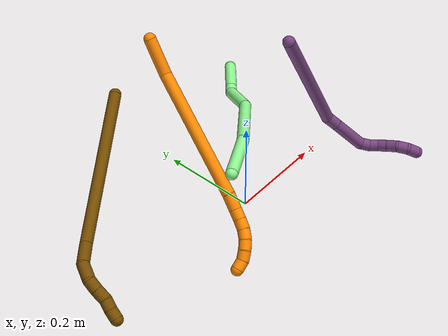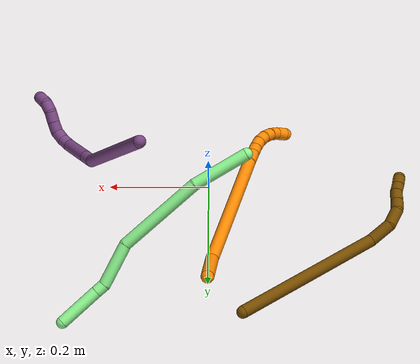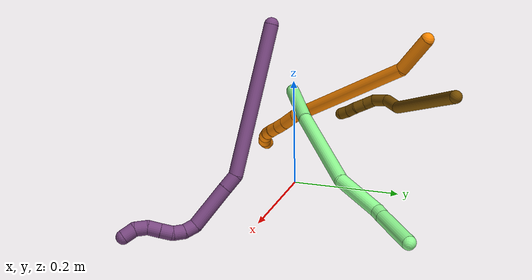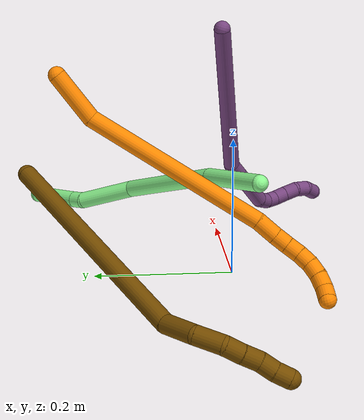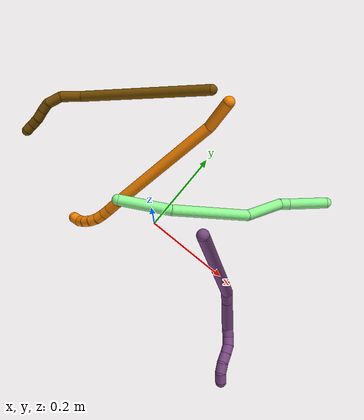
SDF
<sdf version="1.7">
 <world name="default">
  <model name="photoneo_s_sensor">
   <static>1</static>
   <pose>0 0 2 1.57079 1.57079 3.14159</pose>
   <link name="link">
    <inertial><mass>0.1</mass></inertial>
    <sensor name="sensor" type="depth">
     <update_rate>30</update_rate>
     <camera>
      <horizontal_fov>1.22</horizontal_fov>
      <image><width>1920</width><height>1200</height><format>B8G8R8</format></image>
      <clip><near>0.1</near><far>4</far></clip>
      <depth_camera><output>points</output></depth_camera>
     </camera>
     <plugin name="camera_plugin" filename="libgazebo_ros_depth_camera.so">
      <baseline>0.2</baseline>
      <alwaysOn>1</alwaysOn>
      <updateRate>0.0</updateRate>
      <cameraName>camera_ir</cameraName>
      <imageTopicName>/camera/color/image_raw</imageTopicName>
      <cameraInfoTopicName>/camera/color/camera_info</cameraInfoTopicName>
      <depthImageTopicName>/camera/depth/image_raw</depthImageTopicName>
      <depthImageCameraInfoTopicName>/camera/depth/camera_info</depthImageCameraInfoTopicName>
      <pointCloudTopicName>/camera/depth/points</pointCloudTopicName>
      <frameName>fr_optical</frameName>
      <pointCloudCutoff>0.1</pointCloudCutoff>
      <pointCloudCutoffMax>2.0</pointCloudCutoffMax>
      <distortionK1>0</distortionK1>
      <distortionK2>0</distortionK2>
      <distortionK3>0</distortionK3>
      <distortionT1>0</distortionT1>
      <distortionT2>0</distortionT2>
      <CxPrime>0</CxPrime>
      <Cx>0</Cx>
      <Cy>0</Cy>
      <focalLength>0</focalLength>
      <hackBaseline>0</hackBaseline>
     </plugin>
    </sensor>
   </link>
  </model>
  <model name="bin">
   <static>1</static>
   <link name="bottom">
    <collision name="collision-bottom">
     <pose>0 0 -0.01 0 -0 0</pose>
     <geometry><box><size>0.8 0.6 0.02</size></box></geometry>
     <surface>
      <friction><ode><mu>100</mu><mu2>100</mu2></ode></friction>
      <contact><collide_bitmask>65535</collide_bitmask></contact>
     </surface>
    </collision>
   </link>
   <link name="west_wall">
    <collision name="collision-west_wall">
     <pose>-0.41 0 0.1 0 -0 0</pose>
     <geometry><box><size>0.02 0.6 0.2</size></box></geometry>
     <surface>
      <friction><ode><mu>100</mu><mu2>100</mu2></ode></friction>
      <contact><collide_bitmask>65535</collide_bitmask></contact>
     </surface>
    </collision>
   </link>
   <link name="east_wall">
    <collision name="collision-east_wall">
     <pose>0.41 0 0.1 0 -0 0</pose>
     <geometry><box><size>0.02 0.6 0.2</size></box></geometry>
     <surface>
      <friction><ode><mu>100</mu><mu2>100</mu2></ode></friction>
      <contact><collide_bitmask>65535</collide_bitmask></contact>
     </surface>
    </collision>
   </link>
   <link name="south_wall">
    <collision name="collision-south_wall">
     <pose>0 -0.31 0.1 0 -0 0</pose>
     <geometry><box><size>0.8 0.02 0.2</size></box></geometry>
     <surface>
      <friction><ode><mu>100</mu><mu2>100</mu2></ode></friction>
      <contact><collide_bitmask>65535</collide_bitmask></contact>
     </surface>
    </collision>
   </link>
   <link name="north_wall">
    <collision name="collision-north_wall">
     <pose>0 0.31 0.1 0 -0 0</pose>
     <geometry><box><size>0.8 0.02 0.2</size></box></geometry>
     <surface>
      <friction><ode><mu>100</mu><mu2>100</mu2></ode></friction>
      <contact><collide_bitmask>65535</collide_bitmask></contact>
     </surface>
    </collision>
   </link>
  </model>
  <model name="12">
   <static>0</static>
   <link name="12">
    <collision name="collision-cylinder-e_1_1_4">
     <pose>-0.071217 -0.115047 0.090414 0.904721 -0.452958 -0.223037</pose>
     <geometry><cylinder><radius>0.0125</radius><length>0.325467</length></cylinder></geometry>
     <surface>
      <friction><ode><mu>1.16</mu><mu2>1.16</mu2><slip1>0</slip1><slip2>0</slip2></ode></friction>
      <contact><ode><kp>1e+06</kp><kd>1</kd><max_vel>0</max_vel><min_depth>0.001</min_depth></ode></contact>
     </surface>
    </collision>
    <visual name="visual-cylinder-e_1_1_4">
     <pose>-0.071217 -0.115047 0.090414 0.904721 -0.452958 -0.223037</pose>
     <geometry><cylinder><radius>0.0125</radius><length>0.325467</length></cylinder></geometry>
     <material><ambient>0.466667 0.301961 0 1</ambient></material>
    </visual>
    <collision name="collision-cylinder-e_2_4_5">
     <pose>-0.15265 -0.24023 0.20076 0.47047 -0.428564 -0.104222</pose>
     <geometry><cylinder><radius>0.0125</radius><length>0.049173</length></cylinder></geometry>
     <surface>
      <friction><ode><mu>1.16</mu><mu2>1.16</mu2><slip1>0</slip1><slip2>0</slip2></ode></friction>
      <contact><ode><kp>1e+06</kp><kd>1</kd><max_vel>0</max_vel><min_depth>0.001</min_depth></ode></contact>
     </surface>
    </collision>
    <visual name="visual-cylinder-e_2_4_5">
     <pose>-0.15265 -0.24023 0.20076 0.47047 -0.428564 -0.104222</pose>
     <geometry><cylinder><radius>0.0125</radius><length>0.049173</length></cylinder></geometry>
     <material><ambient>0.466667 0.301961 0 1</ambient></material>
    </visual>
    <collision name="collision-cylinder-e_3_5_6">
     <pose>-0.162781 -0.261011 0.235579 0.620724 0.004732 0.001518</pose>
     <geometry><cylinder><radius>0.0125</radius><length>0.036599</length></cylinder></geometry>
     <surface>
      <friction><ode><mu>1.16</mu><mu2>1.16</mu2><slip1>0</slip1><slip2>0</slip2></ode></friction>
      <contact><ode><kp>1e+06</kp><kd>1</kd><max_vel>0</max_vel><min_depth>0.001</min_depth></ode></contact>
     </surface>
    </collision>
    <visual name="visual-cylinder-e_3_5_6">
     <pose>-0.162781 -0.261011 0.235579 0.620724 0.004732 0.001518</pose>
     <geometry><cylinder><radius>0.0125</radius><length>0.036599</length></cylinder></geometry>
     <material><ambient>0.466667 0.301961 0 1</ambient></material>
    </visual>
    <collision name="collision-cylinder-e_4_6_7">
     <pose>-0.158329 -0.280125 0.257183 0.900257 0.383744 0.187191</pose>
     <geometry><cylinder><radius>0.0125</radius><length>0.02332</length></cylinder></geometry>
     <surface>
      <friction><ode><mu>1.16</mu><mu2>1.16</mu2><slip1>0</slip1><slip2>0</slip2></ode></friction>
      <contact><ode><kp>1e+06</kp><kd>1</kd><max_vel>0</max_vel><min_depth>0.001</min_depth></ode></contact>
     </surface>
    </collision>
    <visual name="visual-cylinder-e_4_6_7">
     <pose>-0.158329 -0.280125 0.257183 0.900257 0.383744 0.187191</pose>
     <geometry><cylinder><radius>0.0125</radius><length>0.02332</length></cylinder></geometry>
     <material><ambient>0.466667 0.301961 0 1</ambient></material>
    </visual>
    <collision name="collision-cylinder-e_5_7_8">
     <pose>-0.148604 -0.296714 0.270756 0.8696 0.467251 0.220154</pose>
     <geometry><cylinder><radius>0.0125</radius><length>0.023799</length></cylinder></geometry>
     <surface>
      <friction><ode><mu>1.16</mu><mu2>1.16</mu2><slip1>0</slip1><slip2>0</slip2></ode></friction>
      <contact><ode><kp>1e+06</kp><kd>1</kd><max_vel>0</max_vel><min_depth>0.001</min_depth></ode></contact>
     </surface>
    </collision>
    <visual name="visual-cylinder-e_5_7_8">
     <pose>-0.148604 -0.296714 0.270756 0.8696 0.467251 0.220154</pose>
     <geometry><cylinder><radius>0.0125</radius><length>0.023799</length></cylinder></geometry>
     <material><ambient>0.466667 0.301961 0 1</ambient></material>
    </visual>
    <collision name="collision-cylinder-e_6_8_9">
     <pose>-0.141115 -0.313357 0.283454 0.969903 0.203075 0.107271</pose>
     <geometry><cylinder><radius>0.0125</radius><length>0.021107</length></cylinder></geometry>
     <surface>
      <friction><ode><mu>1.16</mu><mu2>1.16</mu2><slip1>0</slip1><slip2>0</slip2></ode></friction>
      <contact><ode><kp>1e+06</kp><kd>1</kd><max_vel>0</max_vel><min_depth>0.001</min_depth></ode></contact>
     </surface>
    </collision>
    <visual name="visual-cylinder-e_6_8_9">
     <pose>-0.141115 -0.313357 0.283454 0.969903 0.203075 0.107271</pose>
     <geometry><cylinder><radius>0.0125</radius><length>0.021107</length></cylinder></geometry>
     <material><ambient>0.466667 0.301961 0 1</ambient></material>
    </visual>
    <collision name="collision-cylinder-e_7_9_2">
     <pose>-0.136235 -0.329219 0.295935 0.835392 0.271313 0.121008</pose>
     <geometry><cylinder><radius>0.0125</radius><length>0.020536</length></cylinder></geometry>
     <surface>
      <friction><ode><mu>1.16</mu><mu2>1.16</mu2><slip1>0</slip1><slip2>0</slip2></ode></friction>
      <contact><ode><kp>1e+06</kp><kd>1</kd><max_vel>0</max_vel><min_depth>0.001</min_depth></ode></contact>
     </surface>
    </collision>
    <visual name="visual-cylinder-e_7_9_2">
     <pose>-0.136235 -0.329219 0.295935 0.835392 0.271313 0.121008</pose>
     <geometry><cylinder><radius>0.0125</radius><length>0.020536</length></cylinder></geometry>
     <material><ambient>0.466667 0.301961 0 1</ambient></material>
    </visual>
    <collision name="collision-sphere-2">
     <pose>-0.133483 -0.336555 0.302571 0 -0 0</pose>
     <geometry><sphere><radius>0.0125</radius></sphere></geometry>
     <surface>
      <friction><ode><mu>1.16</mu><mu2>1.16</mu2><slip1>0</slip1><slip2>0</slip2></ode></friction>
      <contact><ode><kp>1e+06</kp><kd>1</kd><max_vel>0</max_vel><min_depth>0.001</min_depth></ode></contact>
     </surface>
    </collision>
    <visual name="visual-sphere-2">
     <pose>-0.133483 -0.336555 0.302571 0 -0 0</pose>
     <geometry><sphere><radius>0.0125</radius></sphere></geometry>
     <material><ambient>0.466667 0.301961 0 1</ambient></material>
    </visual>
    <collision name="collision-sphere-9">
     <pose>-0.138987 -0.321883 0.289298 0 -0 0</pose>
     <geometry><sphere><radius>0.0125</radius></sphere></geometry>
     <surface>
      <friction><ode><mu>1.16</mu><mu2>1.16</mu2><slip1>0</slip1><slip2>0</slip2></ode></friction>
      <contact><ode><kp>1e+06</kp><kd>1</kd><max_vel>0</max_vel><min_depth>0.001</min_depth></ode></contact>
     </surface>
    </collision>
    <visual name="visual-sphere-9">
     <pose>-0.138987 -0.321883 0.289298 0 -0 0</pose>
     <geometry><sphere><radius>0.0125</radius></sphere></geometry>
     <material><ambient>0.466667 0.301961 0 1</ambient></material>
    </visual>
    <collision name="collision-sphere-4">
     <pose>-0.142433 -0.230093 0.180827 0 -0 0</pose>
     <geometry><sphere><radius>0.0125</radius></sphere></geometry>
     <surface>
      <friction><ode><mu>1.16</mu><mu2>1.16</mu2><slip1>0</slip1><slip2>0</slip2></ode></friction>
      <contact><ode><kp>1e+06</kp><kd>1</kd><max_vel>0</max_vel><min_depth>0.001</min_depth></ode></contact>
     </surface>
    </collision>
    <visual name="visual-sphere-4">
     <pose>-0.142433 -0.230093 0.180827 0 -0 0</pose>
     <geometry><sphere><radius>0.0125</radius></sphere></geometry>
     <material><ambient>0.466667 0.301961 0 1</ambient></material>
    </visual>
    <collision name="collision-sphere-1">
     <geometry><sphere><radius>0.0125</radius></sphere></geometry>
     <surface>
      <friction><ode><mu>1.16</mu><mu2>1.16</mu2><slip1>0</slip1><slip2>0</slip2></ode></friction>
      <contact><ode><kp>1e+06</kp><kd>1</kd><max_vel>0</max_vel><min_depth>0.001</min_depth></ode></contact>
     </surface>
    </collision>
    <visual name="visual-sphere-1">
     <geometry><sphere><radius>0.0125</radius></sphere></geometry>
     <material><ambient>0.466667 0.301961 0 1</ambient></material>
    </visual>
    <collision name="collision-sphere-8">
     <pose>-0.143244 -0.304831 0.27761 0 -0 0</pose>
     <geometry><sphere><radius>0.0125</radius></sphere></geometry>
     <surface>
      <friction><ode><mu>1.16</mu><mu2>1.16</mu2><slip1>0</slip1><slip2>0</slip2></ode></friction>
      <contact><ode><kp>1e+06</kp><kd>1</kd><max_vel>0</max_vel><min_depth>0.001</min_depth></ode></contact>
     </surface>
    </collision>
    <visual name="visual-sphere-8">
     <pose>-0.143244 -0.304831 0.27761 0 -0 0</pose>
     <geometry><sphere><radius>0.0125</radius></sphere></geometry>
     <material><ambient>0.466667 0.301961 0 1</ambient></material>
    </visual>
    <collision name="collision-sphere-5">
     <pose>-0.162868 -0.250368 0.220694 0 -0 0</pose>
     <geometry><sphere><radius>0.0125</radius></sphere></geometry>
     <surface>
      <friction><ode><mu>1.16</mu><mu2>1.16</mu2><slip1>0</slip1><slip2>0</slip2></ode></friction>
      <contact><ode><kp>1e+06</kp><kd>1</kd><max_vel>0</max_vel><min_depth>0.001</min_depth></ode></contact>
     </surface>
    </collision>
    <visual name="visual-sphere-5">
     <pose>-0.162868 -0.250368 0.220694 0 -0 0</pose>
     <geometry><sphere><radius>0.0125</radius></sphere></geometry>
     <material><ambient>0.466667 0.301961 0 1</ambient></material>
    </visual>
    <collision name="collision-sphere-6">
     <pose>-0.162694 -0.271654 0.250465 0 -0 0</pose>
     <geometry><sphere><radius>0.0125</radius></sphere></geometry>
     <surface>
      <friction><ode><mu>1.16</mu><mu2>1.16</mu2><slip1>0</slip1><slip2>0</slip2></ode></friction>
      <contact><ode><kp>1e+06</kp><kd>1</kd><max_vel>0</max_vel><min_depth>0.001</min_depth></ode></contact>
     </surface>
    </collision>
    <visual name="visual-sphere-6">
     <pose>-0.162694 -0.271654 0.250465 0 -0 0</pose>
     <geometry><sphere><radius>0.0125</radius></sphere></geometry>
     <material><ambient>0.466667 0.301961 0 1</ambient></material>
    </visual>
    <collision name="collision-sphere-7">
     <pose>-0.153963 -0.288596 0.263902 0 -0 0</pose>
     <geometry><sphere><radius>0.0125</radius></sphere></geometry>
     <surface>
      <friction><ode><mu>1.16</mu><mu2>1.16</mu2><slip1>0</slip1><slip2>0</slip2></ode></friction>
      <contact><ode><kp>1e+06</kp><kd>1</kd><max_vel>0</max_vel><min_depth>0.001</min_depth></ode></contact>
     </surface>
    </collision>
    <visual name="visual-sphere-7">
     <pose>-0.153963 -0.288596 0.263902 0 -0 0</pose>
     <geometry><sphere><radius>0.0125</radius></sphere></geometry>
     <material><ambient>0.466667 0.301961 0 1</ambient></material>
    </visual>
    <inertial>
     <pose>-0.099295 -0.171556 0.144844 0 -0 0</pose>
     <mass>0.5</mass>
     <inertia>
      <ixx>0.001969</ixx>
      <ixy>0</ixy>
      <ixz>0</ixz>
      <iyy>0.001378</iyy>
      <iyz>0</iyz>
      <izz>0.003342</izz>
     </inertia>
    </inertial>
   </link>
   <pose>-0.067966 0.288498 0.175984 1.14715 0.130481 -0.43972</pose>
  </model>
  <model name="13">
   <static>0</static>
   <link name="13">
    <collision name="collision-cylinder-e_1_1_4">
     <pose>0.021223 0.00258 -0.054678 -3.09444 0.369868 -2.89082</pose>
     <geometry><cylinder><radius>0.0125</radius><length>0.117418</length></cylinder></geometry>
     <surface>
      <friction><ode><mu>1.16</mu><mu2>1.16</mu2><slip1>0</slip1><slip2>0</slip2></ode></friction>
      <contact><ode><kp>1e+06</kp><kd>1</kd><max_vel>0</max_vel><min_depth>0.001</min_depth></ode></contact>
     </surface>
    </collision>
    <visual name="visual-cylinder-e_1_1_4">
     <pose>0.021223 0.00258 -0.054678 -3.09444 0.369868 -2.89082</pose>
     <geometry><cylinder><radius>0.0125</radius><length>0.117418</length></cylinder></geometry>
     <material><ambient>0.564706 0.984314 0.572549 1</ambient></material>
    </visual>
    <collision name="collision-cylinder-e_2_4_5">
     <pose>0.076922 0.028306 -0.189916 -2.86181 0.390227 -1.90346</pose>
     <geometry><cylinder><radius>0.0125</radius><length>0.181265</length></cylinder></geometry>
     <surface>
      <friction><ode><mu>1.16</mu><mu2>1.16</mu2><slip1>0</slip1><slip2>0</slip2></ode></friction>
      <contact><ode><kp>1e+06</kp><kd>1</kd><max_vel>0</max_vel><min_depth>0.001</min_depth></ode></contact>
     </surface>
    </collision>
    <visual name="visual-cylinder-e_2_4_5">
     <pose>0.076922 0.028306 -0.189916 -2.86181 0.390227 -1.90346</pose>
     <geometry><cylinder><radius>0.0125</radius><length>0.181265</length></cylinder></geometry>
     <material><ambient>0.564706 0.984314 0.572549 1</ambient></material>
    </visual>
    <collision name="collision-cylinder-e_3_5_6">
     <pose>0.137585 0.073154 -0.300552 -2.51654 0.614776 -1.55312</pose>
     <geometry><cylinder><radius>0.0125</radius><length>0.090803</length></cylinder></geometry>
     <surface>
      <friction><ode><mu>1.16</mu><mu2>1.16</mu2><slip1>0</slip1><slip2>0</slip2></ode></friction>
      <contact><ode><kp>1e+06</kp><kd>1</kd><max_vel>0</max_vel><min_depth>0.001</min_depth></ode></contact>
     </surface>
    </collision>
    <visual name="visual-cylinder-e_3_5_6">
     <pose>0.137585 0.073154 -0.300552 -2.51654 0.614776 -1.55312</pose>
     <geometry><cylinder><radius>0.0125</radius><length>0.090803</length></cylinder></geometry>
     <material><ambient>0.564706 0.984314 0.572549 1</ambient></material>
    </visual>
    <collision name="collision-cylinder-e_4_6_7">
     <pose>0.169031 0.096303 -0.339594 -2.98156 0.524936 -2.56151</pose>
     <geometry><cylinder><radius>0.0125</radius><length>0.020989</length></cylinder></geometry>
     <surface>
      <friction><ode><mu>1.16</mu><mu2>1.16</mu2><slip1>0</slip1><slip2>0</slip2></ode></friction>
      <contact><ode><kp>1e+06</kp><kd>1</kd><max_vel>0</max_vel><min_depth>0.001</min_depth></ode></contact>
     </surface>
    </collision>
    <visual name="visual-cylinder-e_4_6_7">
     <pose>0.169031 0.096303 -0.339594 -2.98156 0.524936 -2.56151</pose>
     <geometry><cylinder><radius>0.0125</radius><length>0.020989</length></cylinder></geometry>
     <material><ambient>0.564706 0.984314 0.572549 1</ambient></material>
    </visual>
    <collision name="collision-cylinder-e_5_7_2">
     <pose>0.19854 0.10341 -0.385757 -2.99061 0.5725 -2.63855</pose>
     <geometry><cylinder><radius>0.0125</radius><length>0.089524</length></cylinder></geometry>
     <surface>
      <friction><ode><mu>1.16</mu><mu2>1.16</mu2><slip1>0</slip1><slip2>0</slip2></ode></friction>
      <contact><ode><kp>1e+06</kp><kd>1</kd><max_vel>0</max_vel><min_depth>0.001</min_depth></ode></contact>
     </surface>
    </collision>
    <visual name="visual-cylinder-e_5_7_2">
     <pose>0.19854 0.10341 -0.385757 -2.99061 0.5725 -2.63855</pose>
     <geometry><cylinder><radius>0.0125</radius><length>0.089524</length></cylinder></geometry>
     <material><ambient>0.564706 0.984314 0.572549 1</ambient></material>
    </visual>
    <collision name="collision-sphere-2">
     <pose>0.222789 0.109069 -0.422953 0 -0 0</pose>
     <geometry><sphere><radius>0.0125</radius></sphere></geometry>
     <surface>
      <friction><ode><mu>1.16</mu><mu2>1.16</mu2><slip1>0</slip1><slip2>0</slip2></ode></friction>
      <contact><ode><kp>1e+06</kp><kd>1</kd><max_vel>0</max_vel><min_depth>0.001</min_depth></ode></contact>
     </surface>
    </collision>
    <visual name="visual-sphere-2">
     <pose>0.222789 0.109069 -0.422953 0 -0 0</pose>
     <geometry><sphere><radius>0.0125</radius></sphere></geometry>
     <material><ambient>0.564706 0.984314 0.572549 1</ambient></material>
    </visual>
    <collision name="collision-sphere-7">
     <pose>0.174291 0.097751 -0.34856 0 -0 0</pose>
     <geometry><sphere><radius>0.0125</radius></sphere></geometry>
     <surface>
      <friction><ode><mu>1.16</mu><mu2>1.16</mu2><slip1>0</slip1><slip2>0</slip2></ode></friction>
      <contact><ode><kp>1e+06</kp><kd>1</kd><max_vel>0</max_vel><min_depth>0.001</min_depth></ode></contact>
     </surface>
    </collision>
    <visual name="visual-sphere-7">
     <pose>0.174291 0.097751 -0.34856 0 -0 0</pose>
     <geometry><sphere><radius>0.0125</radius></sphere></geometry>
     <material><ambient>0.564706 0.984314 0.572549 1</ambient></material>
    </visual>
    <collision name="collision-sphere-6">
     <pose>0.163772 0.094856 -0.330629 0 -0 0</pose>
     <geometry><sphere><radius>0.0125</radius></sphere></geometry>
     <surface>
      <friction><ode><mu>1.16</mu><mu2>1.16</mu2><slip1>0</slip1><slip2>0</slip2></ode></friction>
      <contact><ode><kp>1e+06</kp><kd>1</kd><max_vel>0</max_vel><min_depth>0.001</min_depth></ode></contact>
     </surface>
    </collision>
    <visual name="visual-sphere-6">
     <pose>0.163772 0.094856 -0.330629 0 -0 0</pose>
     <geometry><sphere><radius>0.0125</radius></sphere></geometry>
     <material><ambient>0.564706 0.984314 0.572549 1</ambient></material>
    </visual>
    <collision name="collision-sphere-5">
     <pose>0.111399 0.051453 -0.270476 0 -0 0</pose>
     <geometry><sphere><radius>0.0125</radius></sphere></geometry>
     <surface>
      <friction><ode><mu>1.16</mu><mu2>1.16</mu2><slip1>0</slip1><slip2>0</slip2></ode></friction>
      <contact><ode><kp>1e+06</kp><kd>1</kd><max_vel>0</max_vel><min_depth>0.001</min_depth></ode></contact>
     </surface>
    </collision>
    <visual name="visual-sphere-5">
     <pose>0.111399 0.051453 -0.270476 0 -0 0</pose>
     <geometry><sphere><radius>0.0125</radius></sphere></geometry>
     <material><ambient>0.564706 0.984314 0.572549 1</ambient></material>
    </visual>
    <collision name="collision-sphere-1">
     <geometry><sphere><radius>0.0125</radius></sphere></geometry>
     <surface>
      <friction><ode><mu>1.16</mu><mu2>1.16</mu2><slip1>0</slip1><slip2>0</slip2></ode></friction>
      <contact><ode><kp>1e+06</kp><kd>1</kd><max_vel>0</max_vel><min_depth>0.001</min_depth></ode></contact>
     </surface>
    </collision>
    <visual name="visual-sphere-1">
     <geometry><sphere><radius>0.0125</radius></sphere></geometry>
     <material><ambient>0.564706 0.984314 0.572549 1</ambient></material>
    </visual>
    <collision name="collision-sphere-4">
     <pose>0.042446 0.00516 -0.109356 0 -0 0</pose>
     <geometry><sphere><radius>0.0125</radius></sphere></geometry>
     <surface>
      <friction><ode><mu>1.16</mu><mu2>1.16</mu2><slip1>0</slip1><slip2>0</slip2></ode></friction>
      <contact><ode><kp>1e+06</kp><kd>1</kd><max_vel>0</max_vel><min_depth>0.001</min_depth></ode></contact>
     </surface>
    </collision>
    <visual name="visual-sphere-4">
     <pose>0.042446 0.00516 -0.109356 0 -0 0</pose>
     <geometry><sphere><radius>0.0125</radius></sphere></geometry>
     <material><ambient>0.564706 0.984314 0.572549 1</ambient></material>
    </visual>
    <inertial>
     <pose>0.100501 0.046711 -0.219598 0 -0 0</pose>
     <mass>0.5</mass>
     <inertia>
      <ixx>-0.00086</ixx>
      <ixy>0</ixy>
      <ixz>0</ixz>
      <iyy>-0.000121</iyy>
      <iyz>0</iyz>
      <izz>-0.000523</izz>
     </inertia>
    </inertial>
   </link>
   <pose>-0.073819 -0.02695 0.156597 -1.20802 -0.490694 1.5635</pose>
  </model>
  <model name="19">
   <static>0</static>
   <link name="19">
    <collision name="collision-cylinder-e_1_1_4">
     <pose>0.005668 -0.012155 -0.035596 2.81254 0.14955 0.847727</pose>
     <geometry><cylinder><radius>0.0125</radius><length>0.076078</length></cylinder></geometry>
     <surface>
      <friction><ode><mu>1.16</mu><mu2>1.16</mu2><slip1>0</slip1><slip2>0</slip2></ode></friction>
      <contact><ode><kp>1e+06</kp><kd>1</kd><max_vel>0</max_vel><min_depth>0.001</min_depth></ode></contact>
     </surface>
    </collision>
    <visual name="visual-cylinder-e_1_1_4">
     <pose>0.005668 -0.012155 -0.035596 2.81254 0.14955 0.847727</pose>
     <geometry><cylinder><radius>0.0125</radius><length>0.076078</length></cylinder></geometry>
     <material><ambient>0.996078 0.537255 0 1</ambient></material>
    </visual>
    <collision name="collision-cylinder-e_2_4_5">
     <pose>0.026031 -0.115587 -0.170357 2.39759 0.108607 0.276852</pose>
     <geometry><cylinder><radius>0.0125</radius><length>0.271154</length></cylinder></geometry>
     <surface>
      <friction><ode><mu>1.16</mu><mu2>1.16</mu2><slip1>0</slip1><slip2>0</slip2></ode></friction>
      <contact><ode><kp>1e+06</kp><kd>1</kd><max_vel>0</max_vel><min_depth>0.001</min_depth></ode></contact>
     </surface>
    </collision>
    <visual name="visual-cylinder-e_2_4_5">
     <pose>0.026031 -0.115587 -0.170357 2.39759 0.108607 0.276852</pose>
     <geometry><cylinder><radius>0.0125</radius><length>0.271154</length></cylinder></geometry>
     <material><ambient>0.996078 0.537255 0 1</ambient></material>
    </visual>
    <collision name="collision-cylinder-e_3_5_6">
     <pose>0.042033 -0.215369 -0.28248 2.56084 0.084078 0.279694</pose>
     <geometry><cylinder><radius>0.0125</radius><length>0.03111</length></cylinder></geometry>
     <surface>
      <friction><ode><mu>1.16</mu><mu2>1.16</mu2><slip1>0</slip1><slip2>0</slip2></ode></friction>
      <contact><ode><kp>1e+06</kp><kd>1</kd><max_vel>0</max_vel><min_depth>0.001</min_depth></ode></contact>
     </surface>
    </collision>
    <visual name="visual-cylinder-e_3_5_6">
     <pose>0.042033 -0.215369 -0.28248 2.56084 0.084078 0.279694</pose>
     <geometry><cylinder><radius>0.0125</radius><length>0.03111</length></cylinder></geometry>
     <material><ambient>0.996078 0.537255 0 1</ambient></material>
    </visual>
    <collision name="collision-cylinder-e_4_6_7">
     <pose>0.044054 -0.230004 -0.303694 2.50275 0.069426 0.209223</pose>
     <geometry><cylinder><radius>0.0125</radius><length>0.020615</length></cylinder></geometry>
     <surface>
      <friction><ode><mu>1.16</mu><mu2>1.16</mu2><slip1>0</slip1><slip2>0</slip2></ode></friction>
      <contact><ode><kp>1e+06</kp><kd>1</kd><max_vel>0</max_vel><min_depth>0.001</min_depth></ode></contact>
     </surface>
    </collision>
    <visual name="visual-cylinder-e_4_6_7">
     <pose>0.044054 -0.230004 -0.303694 2.50275 0.069426 0.209223</pose>
     <geometry><cylinder><radius>0.0125</radius><length>0.020615</length></cylinder></geometry>
     <material><ambient>0.996078 0.537255 0 1</ambient></material>
    </visual>
    <collision name="collision-cylinder-e_5_7_8">
     <pose>0.044794 -0.242855 -0.320016 2.4471 0.002368 0.006542</pose>
     <geometry><cylinder><radius>0.0125</radius><length>0.020999</length></cylinder></geometry>
     <surface>
      <friction><ode><mu>1.16</mu><mu2>1.16</mu2><slip1>0</slip1><slip2>0</slip2></ode></friction>
      <contact><ode><kp>1e+06</kp><kd>1</kd><max_vel>0</max_vel><min_depth>0.001</min_depth></ode></contact>
     </surface>
    </collision>
    <visual name="visual-cylinder-e_5_7_8">
     <pose>0.044794 -0.242855 -0.320016 2.4471 0.002368 0.006542</pose>
     <geometry><cylinder><radius>0.0125</radius><length>0.020999</length></cylinder></geometry>
     <material><ambient>0.996078 0.537255 0 1</ambient></material>
    </visual>
    <collision name="collision-cylinder-e_6_8_9">
     <pose>0.042769 -0.255742 -0.335703 2.46106 -0.206116 -0.568442</pose>
     <geometry><cylinder><radius>0.0125</radius><length>0.02003</length></cylinder></geometry>
     <surface>
      <friction><ode><mu>1.16</mu><mu2>1.16</mu2><slip1>0</slip1><slip2>0</slip2></ode></friction>
      <contact><ode><kp>1e+06</kp><kd>1</kd><max_vel>0</max_vel><min_depth>0.001</min_depth></ode></contact>
     </surface>
    </collision>
    <visual name="visual-cylinder-e_6_8_9">
     <pose>0.042769 -0.255742 -0.335703 2.46106 -0.206116 -0.568442</pose>
     <geometry><cylinder><radius>0.0125</radius><length>0.02003</length></cylinder></geometry>
     <material><ambient>0.996078 0.537255 0 1</ambient></material>
    </visual>
    <collision name="collision-cylinder-e_7_9_10">
     <pose>0.036852 -0.266742 -0.351185 2.59053 -0.396864 -1.23644</pose>
     <geometry><cylinder><radius>0.0125</radius><length>0.020013</length></cylinder></geometry>
     <surface>
      <friction><ode><mu>1.16</mu><mu2>1.16</mu2><slip1>0</slip1><slip2>0</slip2></ode></friction>
      <contact><ode><kp>1e+06</kp><kd>1</kd><max_vel>0</max_vel><min_depth>0.001</min_depth></ode></contact>
     </surface>
    </collision>
    <visual name="visual-cylinder-e_7_9_10">
     <pose>0.036852 -0.266742 -0.351185 2.59053 -0.396864 -1.23644</pose>
     <geometry><cylinder><radius>0.0125</radius><length>0.020013</length></cylinder></geometry>
     <material><ambient>0.996078 0.537255 0 1</ambient></material>
    </visual>
    <collision name="collision-cylinder-e_8_10_11">
     <pose>0.0282 -0.274775 -0.367226 2.76854 -0.498768 -1.86618</pose>
     <geometry><cylinder><radius>0.0125</radius><length>0.020001</length></cylinder></geometry>
     <surface>
      <friction><ode><mu>1.16</mu><mu2>1.16</mu2><slip1>0</slip1><slip2>0</slip2></ode></friction>
      <contact><ode><kp>1e+06</kp><kd>1</kd><max_vel>0</max_vel><min_depth>0.001</min_depth></ode></contact>
     </surface>
    </collision>
    <visual name="visual-cylinder-e_8_10_11">
     <pose>0.0282 -0.274775 -0.367226 2.76854 -0.498768 -1.86618</pose>
     <geometry><cylinder><radius>0.0125</radius><length>0.020001</length></cylinder></geometry>
     <material><ambient>0.996078 0.537255 0 1</ambient></material>
    </visual>
    <collision name="collision-cylinder-e_9_11_2">
     <pose>0.015705 -0.28074 -0.38114 2.69261 -0.880533 -2.23895</pose>
     <geometry><cylinder><radius>0.0125</radius><length>0.020001</length></cylinder></geometry>
     <surface>
      <friction><ode><mu>1.16</mu><mu2>1.16</mu2><slip1>0</slip1><slip2>0</slip2></ode></friction>
      <contact><ode><kp>1e+06</kp><kd>1</kd><max_vel>0</max_vel><min_depth>0.001</min_depth></ode></contact>
     </surface>
    </collision>
    <visual name="visual-cylinder-e_9_11_2">
     <pose>0.015705 -0.28074 -0.38114 2.69261 -0.880533 -2.23895</pose>
     <geometry><cylinder><radius>0.0125</radius><length>0.020001</length></cylinder></geometry>
     <material><ambient>0.996078 0.537255 0 1</ambient></material>
    </visual>
    <collision name="collision-sphere-2">
     <pose>0.007994 -0.283504 -0.386877 0 -0 0</pose>
     <geometry><sphere><radius>0.0125</radius></sphere></geometry>
     <surface>
      <friction><ode><mu>1.16</mu><mu2>1.16</mu2><slip1>0</slip1><slip2>0</slip2></ode></friction>
      <contact><ode><kp>1e+06</kp><kd>1</kd><max_vel>0</max_vel><min_depth>0.001</min_depth></ode></contact>
     </surface>
    </collision>
    <visual name="visual-sphere-2">
     <pose>0.007994 -0.283504 -0.386877 0 -0 0</pose>
     <geometry><sphere><radius>0.0125</radius></sphere></geometry>
     <material><ambient>0.996078 0.537255 0 1</ambient></material>
    </visual>
    <collision name="collision-sphere-11">
     <pose>0.023417 -0.277976 -0.375404 0 -0 0</pose>
     <geometry><sphere><radius>0.0125</radius></sphere></geometry>
     <surface>
      <friction><ode><mu>1.16</mu><mu2>1.16</mu2><slip1>0</slip1><slip2>0</slip2></ode></friction>
      <contact><ode><kp>1e+06</kp><kd>1</kd><max_vel>0</max_vel><min_depth>0.001</min_depth></ode></contact>
     </surface>
    </collision>
    <visual name="visual-sphere-11">
     <pose>0.023417 -0.277976 -0.375404 0 -0 0</pose>
     <geometry><sphere><radius>0.0125</radius></sphere></geometry>
     <material><ambient>0.996078 0.537255 0 1</ambient></material>
    </visual>
    <collision name="collision-sphere-10">
     <pose>0.032984 -0.271575 -0.359048 0 -0 0</pose>
     <geometry><sphere><radius>0.0125</radius></sphere></geometry>
     <surface>
      <friction><ode><mu>1.16</mu><mu2>1.16</mu2><slip1>0</slip1><slip2>0</slip2></ode></friction>
      <contact><ode><kp>1e+06</kp><kd>1</kd><max_vel>0</max_vel><min_depth>0.001</min_depth></ode></contact>
     </surface>
    </collision>
    <visual name="visual-sphere-10">
     <pose>0.032984 -0.271575 -0.359048 0 -0 0</pose>
     <geometry><sphere><radius>0.0125</radius></sphere></geometry>
     <material><ambient>0.996078 0.537255 0 1</ambient></material>
    </visual>
    <collision name="collision-sphere-9">
     <pose>0.04072 -0.26191 -0.343322 0 -0 0</pose>
     <geometry><sphere><radius>0.0125</radius></sphere></geometry>
     <surface>
      <friction><ode><mu>1.16</mu><mu2>1.16</mu2><slip1>0</slip1><slip2>0</slip2></ode></friction>
      <contact><ode><kp>1e+06</kp><kd>1</kd><max_vel>0</max_vel><min_depth>0.001</min_depth></ode></contact>
     </surface>
    </collision>
    <visual name="visual-sphere-9">
     <pose>0.04072 -0.26191 -0.343322 0 -0 0</pose>
     <geometry><sphere><radius>0.0125</radius></sphere></geometry>
     <material><ambient>0.996078 0.537255 0 1</ambient></material>
    </visual>
    <collision name="collision-sphere-4">
     <pose>0.011335 -0.02431 -0.071192 0 -0 0</pose>
     <geometry><sphere><radius>0.0125</radius></sphere></geometry>
     <surface>
      <friction><ode><mu>1.16</mu><mu2>1.16</mu2><slip1>0</slip1><slip2>0</slip2></ode></friction>
      <contact><ode><kp>1e+06</kp><kd>1</kd><max_vel>0</max_vel><min_depth>0.001</min_depth></ode></contact>
     </surface>
    </collision>
    <visual name="visual-sphere-4">
     <pose>0.011335 -0.02431 -0.071192 0 -0 0</pose>
     <geometry><sphere><radius>0.0125</radius></sphere></geometry>
     <material><ambient>0.996078 0.537255 0 1</ambient></material>
    </visual>
    <collision name="collision-sphere-1">
     <geometry><sphere><radius>0.0125</radius></sphere></geometry>
     <surface>
      <friction><ode><mu>1.16</mu><mu2>1.16</mu2><slip1>0</slip1><slip2>0</slip2></ode></friction>
      <contact><ode><kp>1e+06</kp><kd>1</kd><max_vel>0</max_vel><min_depth>0.001</min_depth></ode></contact>
     </surface>
    </collision>
    <visual name="visual-sphere-1">
     <geometry><sphere><radius>0.0125</radius></sphere></geometry>
     <material><ambient>0.996078 0.537255 0 1</ambient></material>
    </visual>
    <collision name="collision-sphere-8">
     <pose>0.044819 -0.249574 -0.328084 0 -0 0</pose>
     <geometry><sphere><radius>0.0125</radius></sphere></geometry>
     <surface>
      <friction><ode><mu>1.16</mu><mu2>1.16</mu2><slip1>0</slip1><slip2>0</slip2></ode></friction>
      <contact><ode><kp>1e+06</kp><kd>1</kd><max_vel>0</max_vel><min_depth>0.001</min_depth></ode></contact>
     </surface>
    </collision>
    <visual name="visual-sphere-8">
     <pose>0.044819 -0.249574 -0.328084 0 -0 0</pose>
     <geometry><sphere><radius>0.0125</radius></sphere></geometry>
     <material><ambient>0.996078 0.537255 0 1</ambient></material>
    </visual>
    <collision name="collision-sphere-5">
     <pose>0.040726 -0.206864 -0.269521 0 -0 0</pose>
     <geometry><sphere><radius>0.0125</radius></sphere></geometry>
     <surface>
      <friction><ode><mu>1.16</mu><mu2>1.16</mu2><slip1>0</slip1><slip2>0</slip2></ode></friction>
      <contact><ode><kp>1e+06</kp><kd>1</kd><max_vel>0</max_vel><min_depth>0.001</min_depth></ode></contact>
     </surface>
    </collision>
    <visual name="visual-sphere-5">
     <pose>0.040726 -0.206864 -0.269521 0 -0 0</pose>
     <geometry><sphere><radius>0.0125</radius></sphere></geometry>
     <material><ambient>0.996078 0.537255 0 1</ambient></material>
    </visual>
    <collision name="collision-sphere-6">
     <pose>0.043339 -0.223873 -0.295439 0 -0 0</pose>
     <geometry><sphere><radius>0.0125</radius></sphere></geometry>
     <surface>
      <friction><ode><mu>1.16</mu><mu2>1.16</mu2><slip1>0</slip1><slip2>0</slip2></ode></friction>
      <contact><ode><kp>1e+06</kp><kd>1</kd><max_vel>0</max_vel><min_depth>0.001</min_depth></ode></contact>
     </surface>
    </collision>
    <visual name="visual-sphere-6">
     <pose>0.043339 -0.223873 -0.295439 0 -0 0</pose>
     <geometry><sphere><radius>0.0125</radius></sphere></geometry>
     <material><ambient>0.996078 0.537255 0 1</ambient></material>
    </visual>
    <collision name="collision-sphere-7">
     <pose>0.044769 -0.236135 -0.311949 0 -0 0</pose>
     <geometry><sphere><radius>0.0125</radius></sphere></geometry>
     <surface>
      <friction><ode><mu>1.16</mu><mu2>1.16</mu2><slip1>0</slip1><slip2>0</slip2></ode></friction>
      <contact><ode><kp>1e+06</kp><kd>1</kd><max_vel>0</max_vel><min_depth>0.001</min_depth></ode></contact>
     </surface>
    </collision>
    <visual name="visual-sphere-7">
     <pose>0.044769 -0.236135 -0.311949 0 -0 0</pose>
     <geometry><sphere><radius>0.0125</radius></sphere></geometry>
     <material><ambient>0.996078 0.537255 0 1</ambient></material>
    </visual>
    <inertial>
     <pose>0.026237 -0.140759 -0.19878 0 -0 0</pose>
     <mass>0.5</mass>
     <inertia>
      <ixx>0.002114</ixx>
      <ixy>0</ixy>
      <ixz>0</ixz>
      <iyy>-0.000719</iyy>
      <iyz>0</iyz>
      <izz>0.00093</izz>
     </inertia>
    </inertial>
   </link>
   <pose>-0.001314 0.246078 0.297352 -0.308096 -0.028198 -0.44754</pose>
  </model>
  <model name="20">
   <static>0</static>
   <link name="20">
    <collision name="collision-cylinder-e_1_1_4">
     <pose>0.066041 -0.027524 -0.110756 2.89802 0.524593 2.28613</pose>
     <geometry><cylinder><radius>0.0125</radius><length>0.263711</length></cylinder></geometry>
     <surface>
      <friction><ode><mu>1.16</mu><mu2>1.16</mu2><slip1>0</slip1><slip2>0</slip2></ode></friction>
      <contact><ode><kp>1e+06</kp><kd>1</kd><max_vel>0</max_vel><min_depth>0.001</min_depth></ode></contact>
     </surface>
    </collision>
    <visual name="visual-cylinder-e_1_1_4">
     <pose>0.066041 -0.027524 -0.110756 2.89802 0.524593 2.28613</pose>
     <geometry><cylinder><radius>0.0125</radius><length>0.263711</length></cylinder></geometry>
     <material><ambient>0.478431 0.278431 0.509804 1</ambient></material>
    </visual>
    <collision name="collision-cylinder-e_2_4_5">
     <pose>0.141643 -0.061554 -0.228754 2.40971 0.776359 1.63573</pose>
     <geometry><cylinder><radius>0.0125</radius><length>0.02729</length></cylinder></geometry>
     <surface>
      <friction><ode><mu>1.16</mu><mu2>1.16</mu2><slip1>0</slip1><slip2>0</slip2></ode></friction>
      <contact><ode><kp>1e+06</kp><kd>1</kd><max_vel>0</max_vel><min_depth>0.001</min_depth></ode></contact>
     </surface>
    </collision>
    <visual name="visual-cylinder-e_2_4_5">
     <pose>0.141643 -0.061554 -0.228754 2.40971 0.776359 1.63573</pose>
     <geometry><cylinder><radius>0.0125</radius><length>0.02729</length></cylinder></geometry>
     <material><ambient>0.478431 0.278431 0.509804 1</ambient></material>
    </visual>
    <collision name="collision-cylinder-e_3_5_6">
     <pose>0.179033 -0.087242 -0.257968 2.42387 0.761927 1.63633</pose>
     <geometry><cylinder><radius>0.0125</radius><length>0.080627</length></cylinder></geometry>
     <surface>
      <friction><ode><mu>1.16</mu><mu2>1.16</mu2><slip1>0</slip1><slip2>0</slip2></ode></friction>
      <contact><ode><kp>1e+06</kp><kd>1</kd><max_vel>0</max_vel><min_depth>0.001</min_depth></ode></contact>
     </surface>
    </collision>
    <visual name="visual-cylinder-e_3_5_6">
     <pose>0.179033 -0.087242 -0.257968 2.42387 0.761927 1.63633</pose>
     <geometry><cylinder><radius>0.0125</radius><length>0.080627</length></cylinder></geometry>
     <material><ambient>0.478431 0.278431 0.509804 1</ambient></material>
    </visual>
    <collision name="collision-cylinder-e_4_6_7">
     <pose>0.216049 -0.111259 -0.281279 1.84117 1.07095 1.32497</pose>
     <geometry><cylinder><radius>0.0125</radius><length>0.020934</length></cylinder></geometry>
     <surface>
      <friction><ode><mu>1.16</mu><mu2>1.16</mu2><slip1>0</slip1><slip2>0</slip2></ode></friction>
      <contact><ode><kp>1e+06</kp><kd>1</kd><max_vel>0</max_vel><min_depth>0.001</min_depth></ode></contact>
     </surface>
    </collision>
    <visual name="visual-cylinder-e_4_6_7">
     <pose>0.216049 -0.111259 -0.281279 1.84117 1.07095 1.32497</pose>
     <geometry><cylinder><radius>0.0125</radius><length>0.020934</length></cylinder></geometry>
     <material><ambient>0.478431 0.278431 0.509804 1</ambient></material>
    </visual>
    <collision name="collision-cylinder-e_5_7_8">
     <pose>0.233798 -0.121056 -0.280389 1.14832 1.00482 0.682961</pose>
     <geometry><cylinder><radius>0.0125</radius><length>0.020291</length></cylinder></geometry>
     <surface>
      <friction><ode><mu>1.16</mu><mu2>1.16</mu2><slip1>0</slip1><slip2>0</slip2></ode></friction>
      <contact><ode><kp>1e+06</kp><kd>1</kd><max_vel>0</max_vel><min_depth>0.001</min_depth></ode></contact>
     </surface>
    </collision>
    <visual name="visual-cylinder-e_5_7_8">
     <pose>0.233798 -0.121056 -0.280389 1.14832 1.00482 0.682961</pose>
     <geometry><cylinder><radius>0.0125</radius><length>0.020291</length></cylinder></geometry>
     <material><ambient>0.478431 0.278431 0.509804 1</ambient></material>
    </visual>
    <collision name="collision-cylinder-e_6_8_9">
     <pose>0.248483 -0.132484 -0.272873 0.885631 0.632533 0.307924</pose>
     <geometry><cylinder><radius>0.0125</radius><length>0.020709</length></cylinder></geometry>
     <surface>
      <friction><ode><mu>1.16</mu><mu2>1.16</mu2><slip1>0</slip1><slip2>0</slip2></ode></friction>
      <contact><ode><kp>1e+06</kp><kd>1</kd><max_vel>0</max_vel><min_depth>0.001</min_depth></ode></contact>
     </surface>
    </collision>
    <visual name="visual-cylinder-e_6_8_9">
     <pose>0.248483 -0.132484 -0.272873 0.885631 0.632533 0.307924</pose>
     <geometry><cylinder><radius>0.0125</radius><length>0.020709</length></cylinder></geometry>
     <material><ambient>0.478431 0.278431 0.509804 1</ambient></material>
    </visual>
    <collision name="collision-cylinder-e_7_9_10">
     <pose>0.260636 -0.146172 -0.261986 0.910971 0.583308 0.292021</pose>
     <geometry><cylinder><radius>0.0125</radius><length>0.0219</length></cylinder></geometry>
     <surface>
      <friction><ode><mu>1.16</mu><mu2>1.16</mu2><slip1>0</slip1><slip2>0</slip2></ode></friction>
      <contact><ode><kp>1e+06</kp><kd>1</kd><max_vel>0</max_vel><min_depth>0.001</min_depth></ode></contact>
     </surface>
    </collision>
    <visual name="visual-cylinder-e_7_9_10">
     <pose>0.260636 -0.146172 -0.261986 0.910971 0.583308 0.292021</pose>
     <geometry><cylinder><radius>0.0125</radius><length>0.0219</length></cylinder></geometry>
     <material><ambient>0.478431 0.278431 0.509804 1</ambient></material>
    </visual>
    <collision name="collision-cylinder-e_8_10_11">
     <pose>0.274531 -0.160589 -0.254384 1.29978 0.811161 0.630898</pose>
     <geometry><cylinder><radius>0.0125</radius><length>0.021691</length></cylinder></geometry>
     <surface>
      <friction><ode><mu>1.16</mu><mu2>1.16</mu2><slip1>0</slip1><slip2>0</slip2></ode></friction>
      <contact><ode><kp>1e+06</kp><kd>1</kd><max_vel>0</max_vel><min_depth>0.001</min_depth></ode></contact>
     </surface>
    </collision>
    <visual name="visual-cylinder-e_8_10_11">
     <pose>0.274531 -0.160589 -0.254384 1.29978 0.811161 0.630898</pose>
     <geometry><cylinder><radius>0.0125</radius><length>0.021691</length></cylinder></geometry>
     <material><ambient>0.478431 0.278431 0.509804 1</ambient></material>
    </visual>
    <collision name="collision-cylinder-e_9_11_2">
     <pose>0.291772 -0.173647 -0.25525 2.02548 0.962925 1.39375</pose>
     <geometry><cylinder><radius>0.0125</radius><length>0.022848</length></cylinder></geometry>
     <surface>
      <friction><ode><mu>1.16</mu><mu2>1.16</mu2><slip1>0</slip1><slip2>0</slip2></ode></friction>
      <contact><ode><kp>1e+06</kp><kd>1</kd><max_vel>0</max_vel><min_depth>0.001</min_depth></ode></contact>
     </surface>
    </collision>
    <visual name="visual-cylinder-e_9_11_2">
     <pose>0.291772 -0.173647 -0.25525 2.02548 0.962925 1.39375</pose>
     <geometry><cylinder><radius>0.0125</radius><length>0.022848</length></cylinder></geometry>
     <material><ambient>0.478431 0.278431 0.509804 1</ambient></material>
    </visual>
    <collision name="collision-sphere-2">
     <pose>0.301149 -0.179508 -0.258116 0 -0 0</pose>
     <geometry><sphere><radius>0.0125</radius></sphere></geometry>
     <surface>
      <friction><ode><mu>1.16</mu><mu2>1.16</mu2><slip1>0</slip1><slip2>0</slip2></ode></friction>
      <contact><ode><kp>1e+06</kp><kd>1</kd><max_vel>0</max_vel><min_depth>0.001</min_depth></ode></contact>
     </surface>
    </collision>
    <visual name="visual-sphere-2">
     <pose>0.301149 -0.179508 -0.258116 0 -0 0</pose>
     <geometry><sphere><radius>0.0125</radius></sphere></geometry>
     <material><ambient>0.478431 0.278431 0.509804 1</ambient></material>
    </visual>
    <collision name="collision-sphere-11">
     <pose>0.282395 -0.167785 -0.252385 0 -0 0</pose>
     <geometry><sphere><radius>0.0125</radius></sphere></geometry>
     <surface>
      <friction><ode><mu>1.16</mu><mu2>1.16</mu2><slip1>0</slip1><slip2>0</slip2></ode></friction>
      <contact><ode><kp>1e+06</kp><kd>1</kd><max_vel>0</max_vel><min_depth>0.001</min_depth></ode></contact>
     </surface>
    </collision>
    <visual name="visual-sphere-11">
     <pose>0.282395 -0.167785 -0.252385 0 -0 0</pose>
     <geometry><sphere><radius>0.0125</radius></sphere></geometry>
     <material><ambient>0.478431 0.278431 0.509804 1</ambient></material>
    </visual>
    <collision name="collision-sphere-10">
     <pose>0.266667 -0.153393 -0.256384 0 -0 0</pose>
     <geometry><sphere><radius>0.0125</radius></sphere></geometry>
     <surface>
      <friction><ode><mu>1.16</mu><mu2>1.16</mu2><slip1>0</slip1><slip2>0</slip2></ode></friction>
      <contact><ode><kp>1e+06</kp><kd>1</kd><max_vel>0</max_vel><min_depth>0.001</min_depth></ode></contact>
     </surface>
    </collision>
    <visual name="visual-sphere-10">
     <pose>0.266667 -0.153393 -0.256384 0 -0 0</pose>
     <geometry><sphere><radius>0.0125</radius></sphere></geometry>
     <material><ambient>0.478431 0.278431 0.509804 1</ambient></material>
    </visual>
    <collision name="collision-sphere-9">
     <pose>0.254604 -0.138951 -0.267589 0 -0 0</pose>
     <geometry><sphere><radius>0.0125</radius></sphere></geometry>
     <surface>
      <friction><ode><mu>1.16</mu><mu2>1.16</mu2><slip1>0</slip1><slip2>0</slip2></ode></friction>
      <contact><ode><kp>1e+06</kp><kd>1</kd><max_vel>0</max_vel><min_depth>0.001</min_depth></ode></contact>
     </surface>
    </collision>
    <visual name="visual-sphere-9">
     <pose>0.254604 -0.138951 -0.267589 0 -0 0</pose>
     <geometry><sphere><radius>0.0125</radius></sphere></geometry>
     <material><ambient>0.478431 0.278431 0.509804 1</ambient></material>
    </visual>
    <collision name="collision-sphere-4">
     <pose>0.132083 -0.055048 -0.221512 0 -0 0</pose>
     <geometry><sphere><radius>0.0125</radius></sphere></geometry>
     <surface>
      <friction><ode><mu>1.16</mu><mu2>1.16</mu2><slip1>0</slip1><slip2>0</slip2></ode></friction>
      <contact><ode><kp>1e+06</kp><kd>1</kd><max_vel>0</max_vel><min_depth>0.001</min_depth></ode></contact>
     </surface>
    </collision>
    <visual name="visual-sphere-4">
     <pose>0.132083 -0.055048 -0.221512 0 -0 0</pose>
     <geometry><sphere><radius>0.0125</radius></sphere></geometry>
     <material><ambient>0.478431 0.278431 0.509804 1</ambient></material>
    </visual>
    <collision name="collision-sphere-1">
     <geometry><sphere><radius>0.0125</radius></sphere></geometry>
     <surface>
      <friction><ode><mu>1.16</mu><mu2>1.16</mu2><slip1>0</slip1><slip2>0</slip2></ode></friction>
      <contact><ode><kp>1e+06</kp><kd>1</kd><max_vel>0</max_vel><min_depth>0.001</min_depth></ode></contact>
     </surface>
    </collision>
    <visual name="visual-sphere-1">
     <geometry><sphere><radius>0.0125</radius></sphere></geometry>
     <material><ambient>0.478431 0.278431 0.509804 1</ambient></material>
    </visual>
    <collision name="collision-sphere-8">
     <pose>0.242361 -0.126018 -0.278158 0 -0 0</pose>
     <geometry><sphere><radius>0.0125</radius></sphere></geometry>
     <surface>
      <friction><ode><mu>1.16</mu><mu2>1.16</mu2><slip1>0</slip1><slip2>0</slip2></ode></friction>
      <contact><ode><kp>1e+06</kp><kd>1</kd><max_vel>0</max_vel><min_depth>0.001</min_depth></ode></contact>
     </surface>
    </collision>
    <visual name="visual-sphere-8">
     <pose>0.242361 -0.126018 -0.278158 0 -0 0</pose>
     <geometry><sphere><radius>0.0125</radius></sphere></geometry>
     <material><ambient>0.478431 0.278431 0.509804 1</ambient></material>
    </visual>
    <collision name="collision-sphere-5">
     <pose>0.151204 -0.06806 -0.235996 0 -0 0</pose>
     <geometry><sphere><radius>0.0125</radius></sphere></geometry>
     <surface>
      <friction><ode><mu>1.16</mu><mu2>1.16</mu2><slip1>0</slip1><slip2>0</slip2></ode></friction>
      <contact><ode><kp>1e+06</kp><kd>1</kd><max_vel>0</max_vel><min_depth>0.001</min_depth></ode></contact>
     </surface>
    </collision>
    <visual name="visual-sphere-5">
     <pose>0.151204 -0.06806 -0.235996 0 -0 0</pose>
     <geometry><sphere><radius>0.0125</radius></sphere></geometry>
     <material><ambient>0.478431 0.278431 0.509804 1</ambient></material>
    </visual>
    <collision name="collision-sphere-6">
     <pose>0.206863 -0.106425 -0.279939 0 -0 0</pose>
     <geometry><sphere><radius>0.0125</radius></sphere></geometry>
     <surface>
      <friction><ode><mu>1.16</mu><mu2>1.16</mu2><slip1>0</slip1><slip2>0</slip2></ode></friction>
      <contact><ode><kp>1e+06</kp><kd>1</kd><max_vel>0</max_vel><min_depth>0.001</min_depth></ode></contact>
     </surface>
    </collision>
    <visual name="visual-sphere-6">
     <pose>0.206863 -0.106425 -0.279939 0 -0 0</pose>
     <geometry><sphere><radius>0.0125</radius></sphere></geometry>
     <material><ambient>0.478431 0.278431 0.509804 1</ambient></material>
    </visual>
    <collision name="collision-sphere-7">
     <pose>0.225235 -0.116094 -0.282619 0 -0 0</pose>
     <geometry><sphere><radius>0.0125</radius></sphere></geometry>
     <surface>
      <friction><ode><mu>1.16</mu><mu2>1.16</mu2><slip1>0</slip1><slip2>0</slip2></ode></friction>
      <contact><ode><kp>1e+06</kp><kd>1</kd><max_vel>0</max_vel><min_depth>0.001</min_depth></ode></contact>
     </surface>
    </collision>
    <visual name="visual-sphere-7">
     <pose>0.225235 -0.116094 -0.282619 0 -0 0</pose>
     <geometry><sphere><radius>0.0125</radius></sphere></geometry>
     <material><ambient>0.478431 0.278431 0.509804 1</ambient></material>
    </visual>
    <inertial>
     <pose>0.136915 -0.068306 -0.18113 0 -0 0</pose>
     <mass>0.5</mass>
     <inertia>
      <ixx>0.000197</ixx>
      <ixy>0</ixy>
      <ixz>0</ixz>
      <iyy>0.002182</iyy>
      <iyz>0</iyz>
      <izz>-0.000482</izz>
     </inertia>
    </inertial>
   </link>
   <pose>0.125247 0.002086 0.336632 0.27397 0.094845 -0.342628</pose>
  </model>
 </world>
</sdf>
